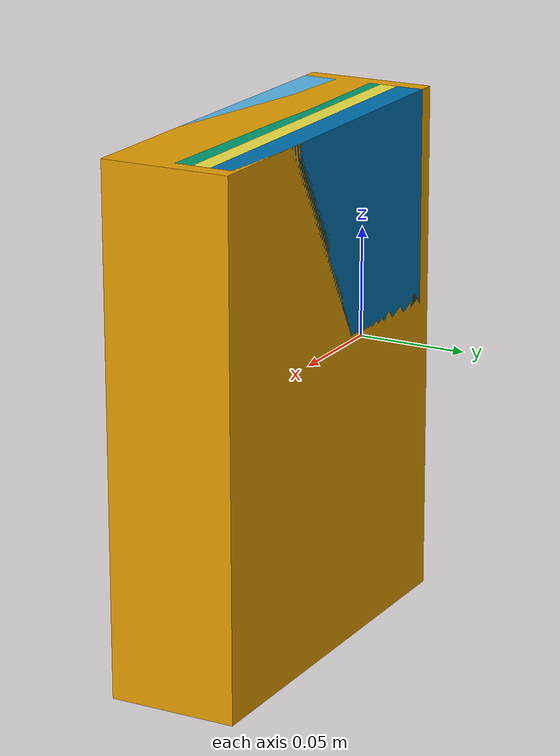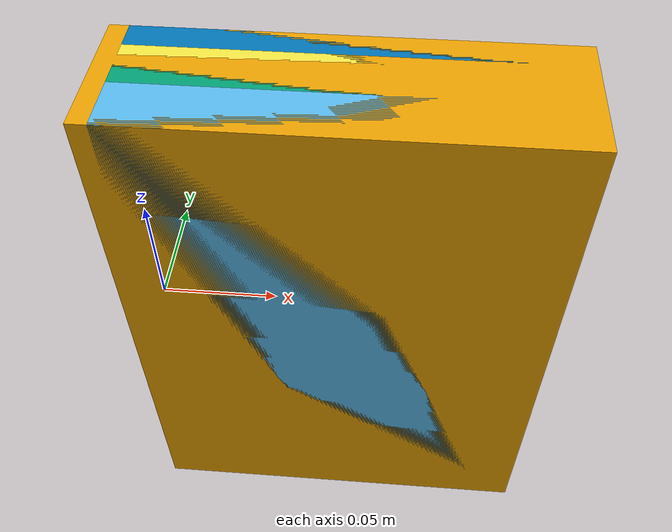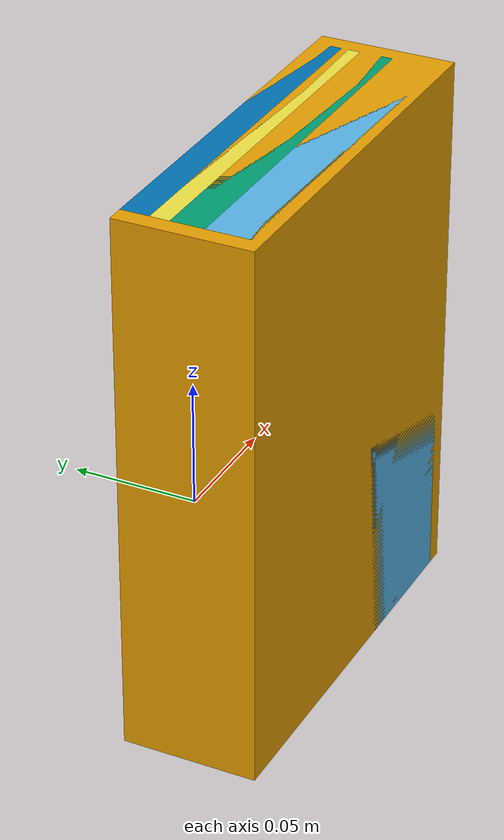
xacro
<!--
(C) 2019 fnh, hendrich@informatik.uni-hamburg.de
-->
<?xml version="1.0" ?>
<robot name="articulated_book_voynich"
       xmlns:controller="http://playerstage.sourceforge.net/gazebo/xmlschema/#controller"
       xmlns:interface="http://playerstage.sourceforge.net/gazebo/xmlschema/#interface"
       xmlns:sensor="http://playerstage.sourceforge.net/gazebo/xmlschema/#sensor"
       xmlns:xacro="http://www.ros.org/wiki/xacro">

  <xacro:include filename="$(find tams_books_world)/urdf/book_part.xacro" />

  <!-- main link, no inertia, no collision, no visual -->
  <link name="book_voynich_link" >
    <visual>
      <origin xyz="${0.16/2} 0 0" rpy="0 0 0" />
      <geometry>
        <box size="0.175 0.057 0.230" rpy="0 0 0" />
      </geometry>
    </visual>
  </link>

  <xacro:book_part
      name="book_voynich_part1"
      weight="0.80"
      mesh="voynich/book-voynich-part1.dae"
      xsize="0.160"
      ysize="0.023"
      zsize="0.230"
  />

  <xacro:book_part
      name="book_voynich_part2"
      weight="0.50"
      mesh="voynich/book-voynich-part2.dae"
      xsize="0.160"
      ysize="0.014"
      zsize="0.230"
  />

  <xacro:book_part
      name="book_voynich_part3"
      weight="0.28"
      mesh="voynich/book-voynich-part3.dae"
      xsize="0.160"
      ysize="0.008"
      zsize="0.230"
  />

  <xacro:book_part
      name="book_voynich_part4"
      weight="0.42"
      mesh="voynich/book-voynich-part4.dae"
      xsize="0.160"
      ysize="0.012"
      zsize="0.230"
  />

  <!-- back part of the book fixed to the root link -->
  <joint name="book_voynich_part4_joint" type="fixed" >
    <parent link="book_voynich_link" />
    <child  link="book_voynich_part4_link" />
    <origin xyz="0 ${0.057/2} 0" rpy="0 0 0" />
  </joint>

  <joint name="book_voynich_part1_joint" type="revolute" >
    <parent link="book_voynich_part2_link" />
    <child  link="book_voynich_part1_link" />
    <axis xyz="0 0 1" />
    <origin xyz="0 ${-0.014} 0" rpy="0 0 0" />
    <limit lower="-3.14" upper="0.0" effort="1" velocity="1" />
  </joint>

  <joint name="book_voynich_part2_joint" type="revolute" >
    <parent link="book_voynich_part3_link" />
    <child  link="book_voynich_part2_link" />
    <axis xyz="0 0 1" />
    <origin xyz="0 ${-0.008} 0" rpy="0 0 0" />
    <limit lower="-3.14" upper="0.0" effort="1" velocity="1" />
  </joint>

  <joint name="book_voynich_part3_joint" type="revolute" >
    <parent link="book_voynich_part4_link" />
    <child  link="book_voynich_part3_link" />
    <axis xyz="0 0 1" />
    <origin xyz="0  ${-0.012} 0" rpy="0 0 0" />
    <limit lower="-3.14" upper="0.0" effort="1" velocity="1" />
  </joint>

</robot>

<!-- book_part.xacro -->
<robot name="book_part"
       xmlns:controller="http://playerstage.sourceforge.net/gazebo/xmlschema/#controller"
       xmlns:interface="http://playerstage.sourceforge.net/gazebo/xmlschema/#interface"
       xmlns:sensor="http://playerstage.sourceforge.net/gazebo/xmlschema/#sensor"
       xmlns:xacro="http://www.ros.org/wiki/xacro">

<xacro:macro name="book_part" params="name weight mesh xsize ysize zsize">

  <!-- main body with Collada mesh for both visual and collision -->
  <link name="${name}_link">
    <inertial>
      <mass value="${weight}"/>
      <origin rpy="0 0 0" xyz="${xsize/2} ${-ysize/2} 0"/>
      <inertia ixx="0.001" ixy="0" ixz="0" iyy="0.001" iyz="0" izz="0.001"/>
    </inertial>
    <collision>
      <origin rpy="0 0 0" xyz="${xsize/2} ${-ysize/2} 0"/>
      <geometry>
        <box size="${xsize} ${ysize} ${zsize}" rpy="0 0 0" />
      </geometry>
    </collision>
    <visual>
      <origin rpy="0 0 0" xyz="${xsize/2} ${-ysize/2} 0"/>
      <geometry>
        <mesh filename="package://tams_books_world/meshes/${mesh}" scale="${0.5*xsize} ${0.5*ysize} ${0.5*zsize}" />
      </geometry>
    </visual>
  </link>
  <gazebo reference="${name}_link">
    <!-- material/texture definition for Gazebo -->
    <turnGravityOff>false</turnGravityOff>
    <selfCollide>true</selfCollide>
    <mu1>10</mu1>
    <mu2>20</mu2>
    <kp>1000000.0</kp>
    <kd>1.0</kd>
  </gazebo>
</xacro:macro>

</robot>
